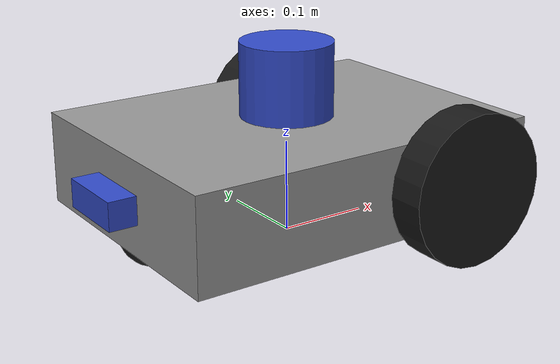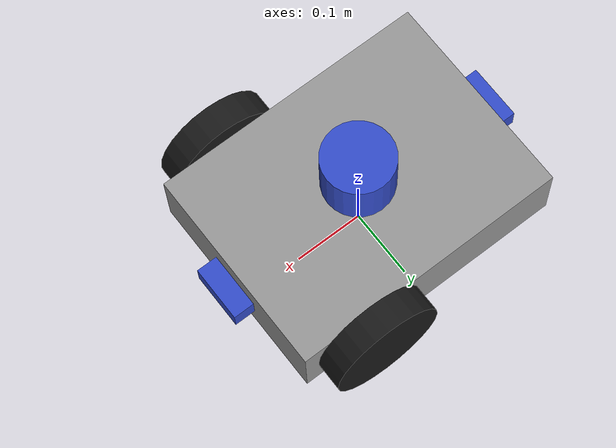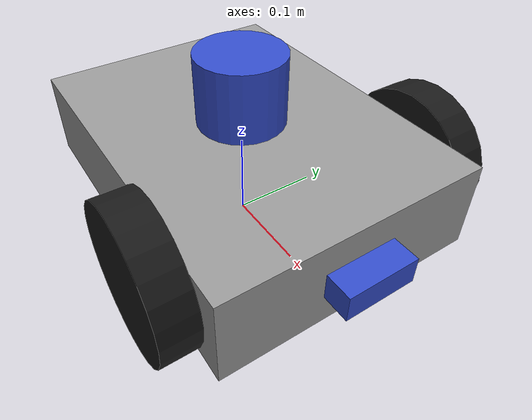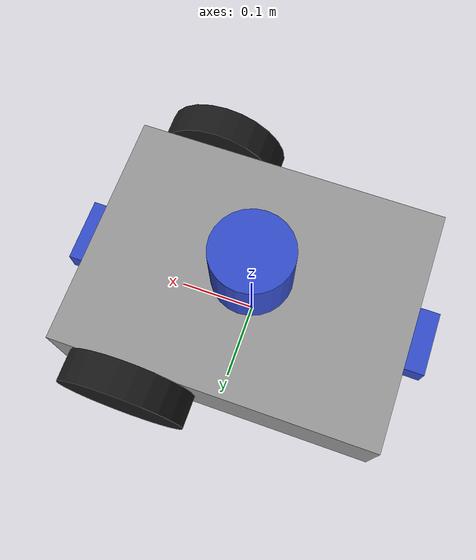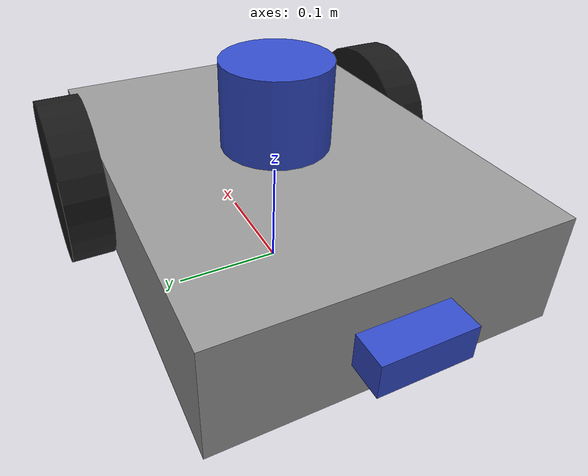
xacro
<?xml version="1.0"?>
<robot xmlns:xacro="http://www.ros.org/wiki/xacro" name="diffdrive_bot">

  <!-- Dimensions (m) and masses (kg) -->
  <xacro:property name="chassis_length" value="0.40" />
  <xacro:property name="chassis_width" value="0.30" />
  <xacro:property name="chassis_height" value="0.10" />
  <xacro:property name="chassis_mass" value="5.0" />
  <xacro:property name="wheel_radius" value="0.08" />
  <xacro:property name="wheel_width" value="0.04" />
  <xacro:property name="wheel_mass" value="0.5" />
  <xacro:property name="wheel_separation" value="0.34" />
  <xacro:property name="wheel_x" value="0.10" />
  <xacro:property name="caster_radius" value="0.04" />
  <xacro:property name="caster_mass" value="0.2" />
  <xacro:property name="lidar_radius" value="0.05" />
  <xacro:property name="lidar_height" value="0.08" />
  <xacro:property name="lidar_mass" value="0.2" />
  <xacro:property name="camera_size" value="0.03 0.08 0.03" />
  <xacro:property name="camera_mass" value="0.1" />

  <!-- (Exercise step 1)properties for the depth camera's size and mass -->
  <xacro:property name="depth_camera_size" value="0.03 0.08 0.03" />
  <xacro:property name="depth_camera_mass" value="0.1" />
  <xacro:property name="imu_size" value="0.02 0.02 0.01" />
  <xacro:property name="imu_mass" value="0.01" />

  <xacro:macro name="box_inertia" params="m x y z">
    <inertia ixx="${m*(y*y+z*z)/12}" ixy="0" ixz="0" iyy="${m*(x*x+z*z)/12}" iyz="0" izz="${m*(x*x+y*y)/12}" />
  </xacro:macro>

  <xacro:macro name="cylinder_inertia" params="m r l">
    <inertia ixx="${m*(3*r*r+l*l)/12}" ixy="0" ixz="0" iyy="${m*(3*r*r+l*l)/12}" iyz="0" izz="${m*r*r/2}" />
  </xacro:macro>

  <xacro:macro name="sphere_inertia" params="m r">
    <inertia ixx="${2*m*r*r/5}" ixy="0" ixz="0" iyy="${2*m*r*r/5}" iyz="0" izz="${2*m*r*r/5}" />
  </xacro:macro>

  <material name="grey">
    <color rgba="0.6 0.6 0.6 1" />
  </material>
  <material name="black">
    <color rgba="0.1 0.1 0.1 1" />
  </material>
  <material name="blue">
    <color rgba="0.2 0.3 0.8 1" />
  </material>

  <!-- Chassis -->
  <link name="base_footprint" />

  <link name="base_link">
    <visual>
      <geometry>
        <box size="${chassis_length} ${chassis_width} ${chassis_height}" />
      </geometry>
      <material name="grey" />
    </visual>
    <collision>
      <geometry>
        <box size="${chassis_length} ${chassis_width} ${chassis_height}" />
      </geometry>
    </collision>
    <inertial>
      <mass value="${chassis_mass}" />
      <xacro:box_inertia m="${chassis_mass}" x="${chassis_length}" y="${chassis_width}" z="${chassis_height}" />
    </inertial>
  </link>

  <joint name="base_joint" type="fixed">
    <parent link="base_footprint" />
    <child link="base_link" />
    <origin xyz="0 0 ${wheel_radius}" />
  </joint>

  <!-- Driven wheels, rolling about their y axis -->
  <xacro:macro name="wheel" params="side y">
    <link name="${side}_wheel">
      <visual>
        <origin rpy="${pi/2} 0 0" />
        <geometry>
          <cylinder radius="${wheel_radius}" length="${wheel_width}" />
        </geometry>
        <material name="black" />
      </visual>
      <collision>
        <origin rpy="${pi/2} 0 0" />
        <geometry>
          <cylinder radius="${wheel_radius}" length="${wheel_width}" />
        </geometry>
      </collision>
      <inertial>
        <origin rpy="${pi/2} 0 0" />
        <mass value="${wheel_mass}" />
        <xacro:cylinder_inertia m="${wheel_mass}" r="${wheel_radius}" l="${wheel_width}" />
      </inertial>
    </link>

    <joint name="${side}_wheel_joint" type="continuous">
      <parent link="base_link" />
      <child link="${side}_wheel" />
      <origin xyz="${wheel_x} ${y} 0" />
      <axis xyz="0 1 0" />
    </joint>
  </xacro:macro>

  <xacro:wheel side="left" y="${wheel_separation/2}" />
  <xacro:wheel side="right" y="${-wheel_separation/2}" />

  <!-- Passive ball caster at the rear -->
  <link name="caster">
    <visual>
      <geometry>
        <sphere radius="${caster_radius}" />
      </geometry>
      <material name="black" />
    </visual>
    <collision>
      <geometry>
        <sphere radius="${caster_radius}" />
      </geometry>
    </collision>
    <inertial>
      <mass value="${caster_mass}" />
      <xacro:sphere_inertia m="${caster_mass}" r="${caster_radius}" />
    </inertial>
  </link>

  <joint name="caster_joint" type="fixed">
    <parent link="base_link" />
    <child link="caster" />
    <origin xyz="${-chassis_length/2 + caster_radius} 0 ${caster_radius - wheel_radius}" />
  </joint>

  <!-- 2D lidar on top of the chassis, tall enough that the beam clears the wheel tops -->
  <link name="lidar_link">
    <visual>
      <geometry>
        <cylinder radius="${lidar_radius}" length="${lidar_height}" />
      </geometry>
      <material name="blue" />
    </visual>
    <collision>
      <geometry>
        <cylinder radius="${lidar_radius}" length="${lidar_height}" />
      </geometry>
    </collision>
    <inertial>
      <mass value="${lidar_mass}" />
      <xacro:cylinder_inertia m="${lidar_mass}" r="${lidar_radius}" l="${lidar_height}" />
    </inertial>
  </link>

  <joint name="lidar_joint" type="fixed">
    <parent link="base_link" />
    <child link="lidar_link" />
    <origin xyz="0 0 ${chassis_height/2 + lidar_height/2}" />
  </joint>

  <!-- Camera on the front face, looking along x -->
  <link name="camera_link">
    <visual>
      <geometry>
        <box size="${camera_size}" />
      </geometry>
      <material name="blue" />
    </visual>
    <collision>
      <geometry>
        <box size="${camera_size}" />
      </geometry>
    </collision>
    <inertial>
      <mass value="${camera_mass}" />
      <xacro:box_inertia m="${camera_mass}" x="0.03" y="0.08" z="0.03" />
    </inertial>
  </link>

  <joint name="camera_joint" type="fixed">
    <parent link="base_link" />
    <child link="camera_link" />
    <origin xyz="${chassis_length/2 + 0.015} 0 0" />
  </joint>

  <link name="depth_camera_link">
        <visual>
          <geometry>
            <box size="${depth_camera_size}" />
          </geometry>
          <material name="blue" />
        </visual>
        <collision>
          <geometry>
            <box size="${depth_camera_size}" />
          </geometry>
        </collision>
        <inertial>
          <mass value="${depth_camera_mass}" />
          <xacro:box_inertia m="${depth_camera_mass}" x="0.03" y="0.08" z="0.03" />
        </inertial>
      </link>

      <joint name="depth_camera_joint" type="fixed">
        <parent link="base_link" />
        <child link="depth_camera_link" />
        <origin xyz="${-(chassis_length/2 + 0.015)} 0 0" rpy="0 0 ${pi}" />
      </joint>

  <!-- (exercise Step 1): IMU at the centre of the chassis.
       Add the link imu_link and a fixed joint to base_link. -->
      <!-- IMU at the centre of the chassis -->
      <link name="imu_link">
        <visual>
          <geometry>
            <box size="${imu_size}" />
          </geometry>
          <material name="black" />
        </visual>
        <collision>
          <geometry>
            <box size="${imu_size}" />
          </geometry>
        </collision>
        <inertial>
          <mass value="${imu_mass}" />
          <xacro:box_inertia m="${imu_mass}" x="0.02" y="0.02" z="0.01" />
        </inertial>
      </link>

      <joint name="imu_joint" type="fixed">
        <parent link="base_link" />
        <child link="imu_link" />
        <origin xyz="0 0 0" />
      </joint>

  <!-- Frictionless caster so it slides instead of dragging -->
  <gazebo reference="caster">
    <collision>
      <surface>
        <friction>
          <ode>
            <mu>0.0</mu>
            <mu2>0.0</mu2>
          </ode>
        </friction>
      </surface>
    </collision>
  </gazebo>

  <!-- Gazebo merges links joined by fixed joints into one, so gz_frame_id sets the
       frame that the sensor messages are stamped with -->
  <gazebo reference="lidar_link">
    <sensor name="lidar" type="gpu_lidar">
      <topic>/scan</topic>
      <gz_frame_id>lidar_link</gz_frame_id>
      <update_rate>10</update_rate>
      <always_on>true</always_on>
      <visualize>true</visualize>
      <lidar>
        <scan>
          <horizontal>
            <samples>360</samples>
            <resolution>1</resolution>
            <min_angle>-3.14159</min_angle>
            <max_angle>3.14159</max_angle>
          </horizontal>
        </scan>
        <range>
          <min>0.12</min>
          <max>10.0</max>
          <resolution>0.01</resolution>
        </range>
      </lidar>
    </sensor>
  </gazebo>

  <gazebo reference="camera_link">
    <sensor name="camera" type="camera">
      <topic>/camera/image</topic>
      <gz_frame_id>camera_link</gz_frame_id>
      <update_rate>15</update_rate>
      <always_on>true</always_on>
      <camera>
        <camera_info_topic>/camera/camera_info</camera_info_topic>
        <horizontal_fov>1.047</horizontal_fov>
        <image>
          <width>640</width>
          <height>480</height>
          <format>R8G8B8</format>
        </image>
        <clip>
          <near>0.05</near>
          <far>50</far>
        </clip>
      </camera>
    </sensor>
  </gazebo>

    <!-- Gazebo sensor of type depth_camera for depth_camera_link,
       publishing on /depth_camera, with its camera_info_topic set to
       /depth_camera/camera_info -->
  <gazebo reference="depth_camera_link">
        <sensor name="depth_camera" type="depth_camera">
          <topic>/depth_camera</topic>
          <gz_frame_id>depth_camera_link</gz_frame_id>
          <update_rate>10</update_rate>
          <always_on>true</always_on>
          <camera>
            <camera_info_topic>/depth_camera/camera_info</camera_info_topic>
            <image>
              <width>320</width>
              <height>240</height>
              <format>R_FLOAT32</format>
            </image>
            <clip>
              <near>0.1</near>
              <far>10.0</far>
            </clip>
          </camera>
        </sensor>
      </gazebo>

      <!-- T: Gazebo sensor of type imu for imu_link, publishing on /imu -->

      <gazebo reference="imu_link">
        <sensor name="imu" type="imu">
          <topic>/imu</topic>
          <gz_frame_id>imu_link</gz_frame_id>
          <update_rate>50</update_rate>
          <always_on>true</always_on>
        </sensor>
      </gazebo>

  <!-- Gazebo plugins -->
  <gazebo>
    <plugin filename="gz-sim-diff-drive-system" name="gz::sim::systems::DiffDrive">
      <left_joint>left_wheel_joint</left_joint>
      <right_joint>right_wheel_joint</right_joint>
      <wheel_separation>${wheel_separation}</wheel_separation>
      <wheel_radius>${wheel_radius}</wheel_radius>
      <max_linear_acceleration>1.0</max_linear_acceleration>
      <max_velocity>1.0</max_velocity>
      <topic>/cmd_vel</topic>
      <odom_topic>/odom</odom_topic>
      <tf_topic>/tf</tf_topic>
      <frame_id>odom</frame_id>
      <child_frame_id>base_footprint</child_frame_id>
      <odom_publish_frequency>20</odom_publish_frequency>
    </plugin>

    <plugin filename="gz-sim-joint-state-publisher-system" name="gz::sim::systems::JointStatePublisher">
      <topic>/joint_states</topic>
    </plugin>
  </gazebo>

</robot>
